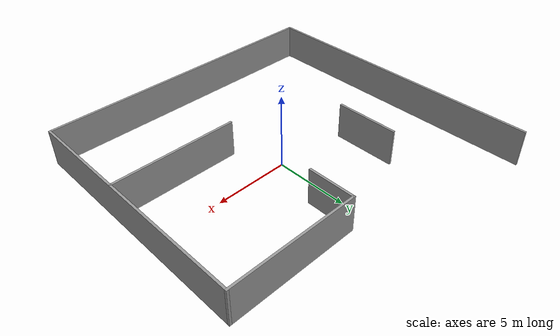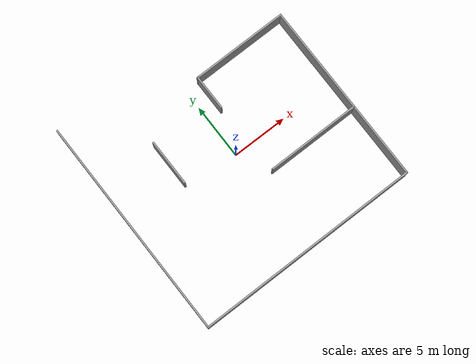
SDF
<?xml version='1.0'?>
<sdf version='1.7'>
  <model name='model'>
    <pose>-0.318282 0.143998 0 0 -0 0</pose>
    <link name='Wall_10'>
      <collision name='Wall_10_Collision'>
        <geometry>
          <box>
            <size>8.75 0.15 2.5</size>
          </box>
        </geometry>
        <pose>0 0 1.25 0 -0 0</pose>
      </collision>
      <visual name='Wall_10_Visual'>
        <pose>0 0 1.25 0 -0 0</pose>
        <geometry>
          <box>
            <size>8.75 0.15 2.5</size>
          </box>
        </geometry>
        <material>
          <script>
            <uri>file://media/materials/scripts/gazebo.material</uri>
            <name>Gazebo/Grey</name>
          </script>
          <ambient>1 1 1 1</ambient>
        </material>
        <meta>
          <layer>0</layer>
        </meta>
      </visual>
      <pose>5.875 6.55 0 0 -0 3.14159</pose>
    </link>
    <link name='Wall_11'>
      <collision name='Wall_11_Collision'>
        <geometry>
          <box>
            <size>3.25 0.15 2.5</size>
          </box>
        </geometry>
        <pose>0 0 1.25 0 -0 0</pose>
      </collision>
      <visual name='Wall_11_Visual'>
        <pose>0 0 1.25 0 -0 0</pose>
        <geometry>
          <box>
            <size>3.25 0.15 2.5</size>
          </box>
        </geometry>
        <material>
          <script>
            <uri>file://media/materials/scripts/gazebo.material</uri>
            <name>Gazebo/Grey</name>
          </script>
          <ambient>1 1 1 1</ambient>
        </material>
        <meta>
          <layer>0</layer>
        </meta>
      </visual>
      <pose>1.575 5 0 0 -0 -1.5708</pose>
    </link>
    <link name='Wall_13'>
      <collision name='Wall_13_Collision'>
        <geometry>
          <box>
            <size>8.5 0.15 2.5</size>
          </box>
        </geometry>
        <pose>0 0 1.25 0 -0 0</pose>
      </collision>
      <visual name='Wall_13_Visual'>
        <pose>0 0 1.25 0 -0 0</pose>
        <geometry>
          <box>
            <size>8.5 0.15 2.5</size>
          </box>
        </geometry>
        <material>
          <script>
            <uri>file://media/materials/scripts/gazebo.material</uri>
            <name>Gazebo/Grey</name>
          </script>
          <ambient>1 1 1 1</ambient>
        </material>
        <meta>
          <layer>0</layer>
        </meta>
      </visual>
      <pose>5.9632 -3.17249 0 0 -0 0</pose>
    </link>
    <link name='Wall_15'>
      <collision name='Wall_15_Collision'>
        <geometry>
          <box>
            <size>4.25 0.15 2.5</size>
          </box>
        </geometry>
        <pose>0 0 1.25 0 -0 0</pose>
      </collision>
      <visual name='Wall_15_Visual'>
        <pose>0 0 1.25 0 -0 0</pose>
        <geometry>
          <box>
            <size>4.25 0.15 2.5</size>
          </box>
        </geometry>
        <material>
          <script>
            <uri>file://media/materials/scripts/gazebo.material</uri>
            <name>Gazebo/Grey</name>
          </script>
          <ambient>1 1 1 1</ambient>
        </material>
        <meta>
          <layer>0</layer>
        </meta>
      </visual>
      <pose>-4.57818 2.40318 0 0 -0 -1.5708</pose>
    </link>
    <link name='Wall_7'>
      <collision name='Wall_7_Collision'>
        <geometry>
          <box>
            <size>20.25 0.15 2.5</size>
          </box>
        </geometry>
        <pose>0 0 1.25 0 -0 0</pose>
      </collision>
      <visual name='Wall_7_Visual'>
        <pose>0 0 1.25 0 -0 0</pose>
        <geometry>
          <box>
            <size>20.25 0.15 2.5</size>
          </box>
        </geometry>
        <material>
          <script>
            <uri>file://media/materials/scripts/gazebo.material</uri>
            <name>Gazebo/Grey</name>
          </script>
          <ambient>1 1 1 1</ambient>
        </material>
        <meta>
          <layer>0</layer>
        </meta>
      </visual>
      <pose>-10.175 -0 0 0 -0 -1.5708</pose>
    </link>
    <link name='Wall_8'>
      <collision name='Wall_8_Collision'>
        <geometry>
          <box>
            <size>20.5 0.15 2.5</size>
          </box>
        </geometry>
        <pose>0 0 1.25 0 -0 0</pose>
      </collision>
      <visual name='Wall_8_Visual'>
        <pose>0 0 1.25 0 -0 0</pose>
        <geometry>
          <box>
            <size>20.5 0.15 2.5</size>
          </box>
        </geometry>
        <material>
          <script>
            <uri>file://media/materials/scripts/gazebo.material</uri>
            <name>Gazebo/Grey</name>
          </script>
          <ambient>1 1 1 1</ambient>
        </material>
        <meta>
          <layer>0</layer>
        </meta>
      </visual>
      <pose>-0 -10.05 0 0 -0 0</pose>
    </link>
    <link name='Wall_9'>
      <collision name='Wall_9_Collision'>
        <geometry>
          <box>
            <size>16.75 0.15 2.5</size>
          </box>
        </geometry>
        <pose>0 0 1.25 0 -0 0</pose>
      </collision>
      <visual name='Wall_9_Visual'>
        <pose>0 0 1.25 0 -0 0</pose>
        <geometry>
          <box>
            <size>16.75 0.15 2.5</size>
          </box>
        </geometry>
        <material>
          <script>
            <uri>file://media/materials/scripts/gazebo.material</uri>
            <name>Gazebo/Grey</name>
          </script>
          <ambient>1 1 1 1</ambient>
        </material>
        <meta>
          <layer>0</layer>
        </meta>
      </visual>
      <pose>10.175 -1.75 0 0 -0 1.5708</pose>
    </link>
    <static>1</static>
  </model>
</sdf>
